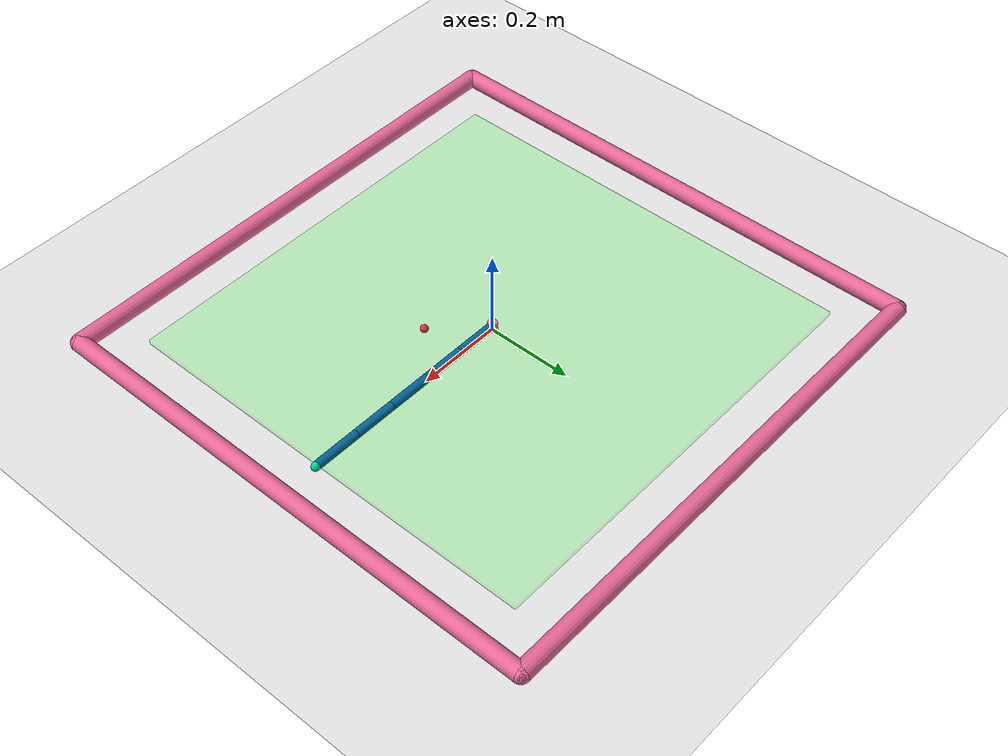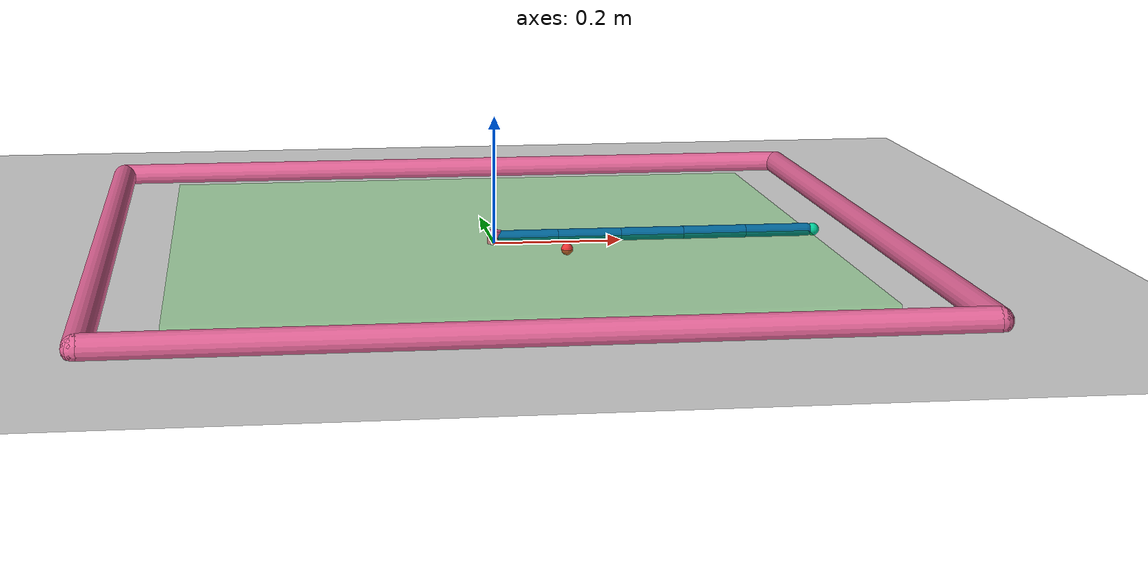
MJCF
<mujoco model="reacher">
   <compiler angle="radian" inertiafromgeom="true"/>
   <default>
      <joint armature="1" damping="1" limited="true"/>
      <geom contype="0" friction="1 0.1 0.1" rgba="0.7 0.7 0 1"/>
   </default>
   <option gravity="0 0 -9.81" integrator="RK4" timestep="0.01"/>
   <worldbody>
      <!-- Arena -->
      <geom conaffinity="0" contype="0" name="ground" pos="0 0 0" rgba="0.9 0.9 0.9 1" size="1 1 10" type="plane"/>
      <geom conaffinity="0" fromto="-.6 -.6 .01 .6 -.6 .01" name="sideS" rgba="0.9 0.4 0.6 1" size=".02" type="capsule"/>
      <geom conaffinity="0" fromto=" .6 -.6 .01 .6  .6 .01" name="sideE" rgba="0.9 0.4 0.6 1" size=".02" type="capsule"/>
      <geom conaffinity="0" fromto="-.6  .6 .01 .6  .6 .01" name="sideN" rgba="0.9 0.4 0.6 1" size=".02" type="capsule"/>
      <geom conaffinity="0" fromto="-.6 -.6 .01 -.6 .6 .01" name="sideW" rgba="0.9 0.4 0.6 1" size=".02" type="capsule"/>
      <!-- Arm -->
      <geom conaffinity="0" contype="0" fromto="0 0 0 0 0 0.02" name="root" rgba="0.9 0.4 0.6 1" size=".011" type="cylinder"/>
      <body name="body0" pos="0 0 .01">
         <geom fromto="0 0 0 0.1 0 0" name="link0" rgba="0.0 0.4 0.6 1" size=".01" type="capsule"/>
         <joint axis="0 0 1" limited="false" name="joint0" pos="0 0 0" type="hinge"/>
         <body name="body1" pos="0.1 0 0">
            <joint axis="0 0 1" limited="false" name="joint1" pos="0 0 0" type="hinge"/>
            <geom fromto="0 0 0 0.1 0 0" name="link1" rgba="0.0 0.4 0.6 1" size=".01" type="capsule"/>
            <body name="body2" pos="0.1 0 0">
               <joint axis="0 0 1" limited="false" name="joint2" pos="0 0 0" type="hinge"/>
               <geom fromto="0 0 0 0.1 0 0" name="link2" rgba="0.0 0.4 0.6 1" size=".01" type="capsule"/>
               <body name="body3" pos="0.1 0 0">
                  <joint axis="0 0 1" limited="false" name="joint3" pos="0 0 0" type="hinge"/>
                  <geom fromto="0 0 0 0.1 0 0" name="link3" rgba="0.0 0.4 0.6 1" size=".01" type="capsule"/>
                  <body name="body4" pos="0.1 0 0">
                     <joint axis="0 0 1" limited="true" name="joint4" pos="0 0 0" range="-3.0 3.0" type="hinge"/>
                     <geom fromto="0 0 0 0.1 0 0" name="link4" rgba="0.0 0.4 0.6 1" size=".01" type="capsule"/>
                     <body name="fingertip" pos="0.11 0 0">
                        <geom contype="0" name="fingertip" pos="0 0 0" rgba="0.0 0.8 0.6 1" size=".01" type="sphere"/>
                     </body>
                  </body>
               </body>
            </body>
         </body>
      </body>
      <!-- Target -->
      <body name="target" pos=".1 -.1 .01">
            <joint armature="0" axis="1 0 0" damping="0" limited="true" name="target_x" pos="0 0 0" range="-.7 .7" ref=".1" stiffness="0" type="slide"/>
         <joint armature="0" axis="0 1 0" damping="0" limited="true" name="target_y" pos="0 0 0" range="-.7 .7" ref="-.1" stiffness="0" type="slide"/>
         <geom conaffinity="0" contype="0" name="target" pos="0 0 0" rgba="0.9 0.2 0.2 1" size=".009" type="sphere"/>
      </body>
        <site name="context_space" pos="0 0.0 0.0" euler="0 0 0" size="0.5 0.5 0.01" rgba="0 1 0 0.1" type="box"/>
   </worldbody>
   <actuator>
      <motor ctrllimited="true" ctrlrange="-1.0 1.0" gear="200.0" joint="joint0"/>
      <motor ctrllimited="true" ctrlrange="-1.0 1.0" gear="200.0" joint="joint1"/>
      <motor ctrllimited="true" ctrlrange="-1.0 1.0" gear="200.0" joint="joint2"/>
      <motor ctrllimited="true" ctrlrange="-1.0 1.0" gear="200.0" joint="joint3"/>
      <motor ctrllimited="true" ctrlrange="-1.0 1.0" gear="200.0" joint="joint4"/>
   </actuator>
</mujoco>
